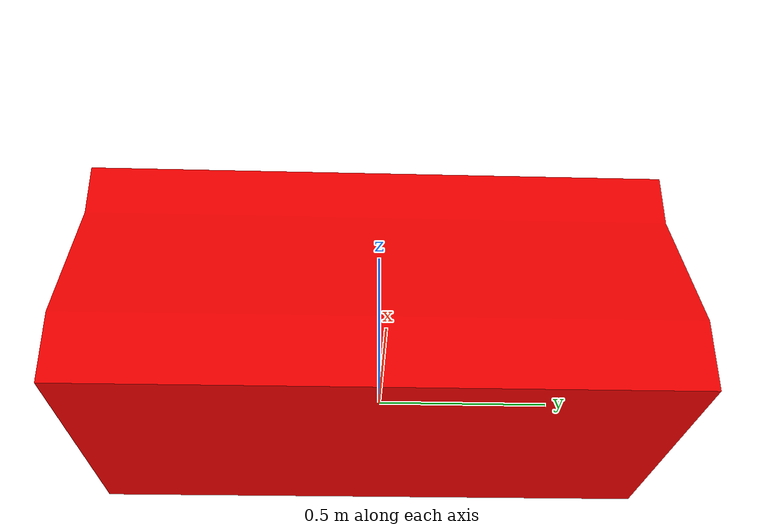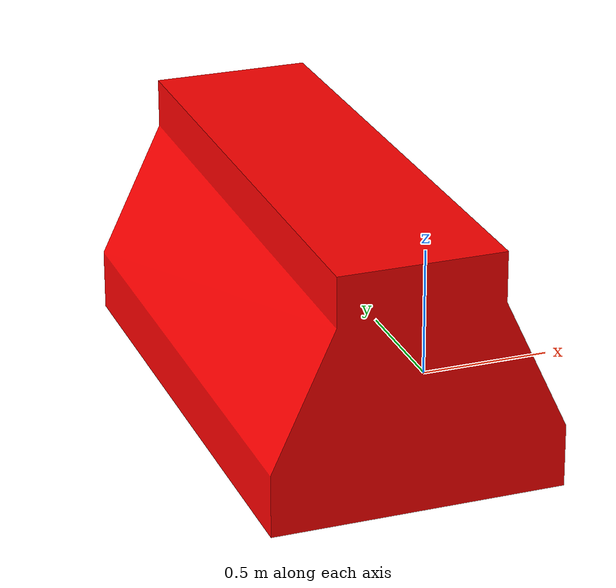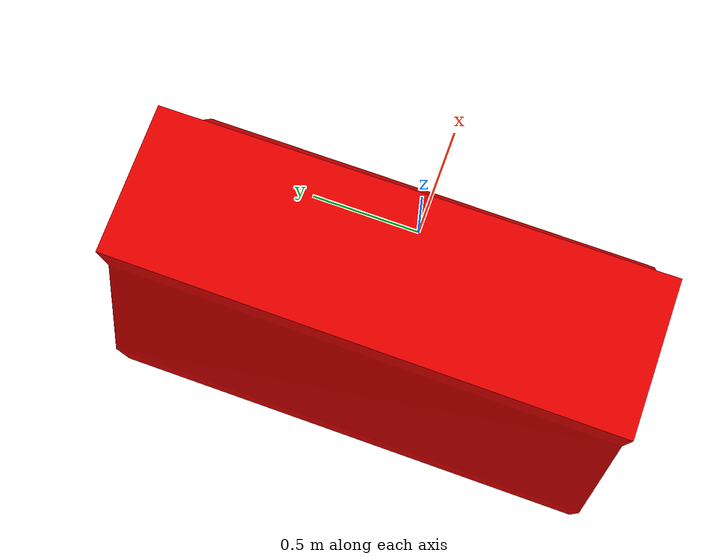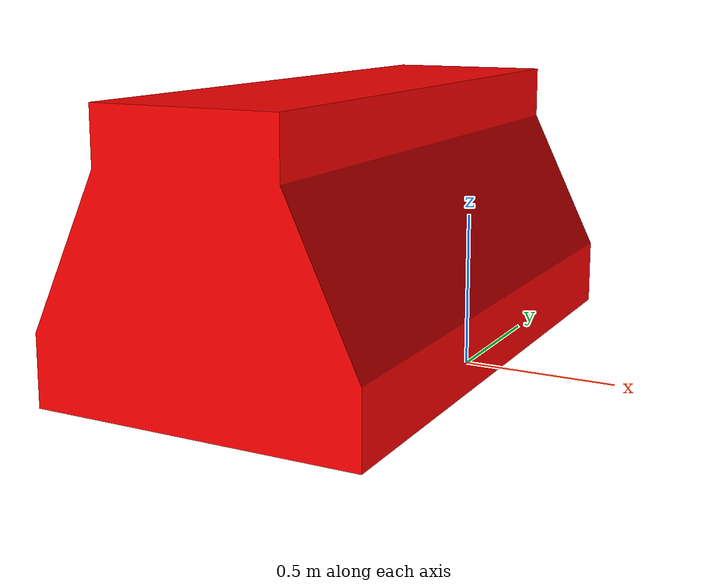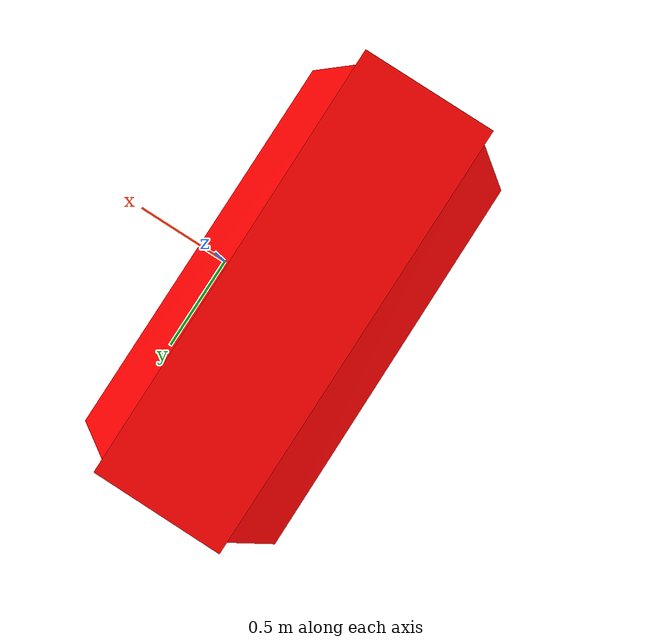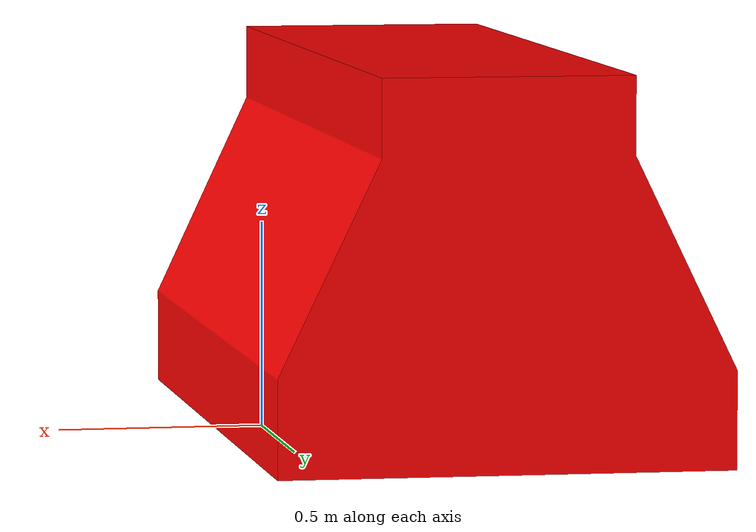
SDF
<?xml version="1.0" ?>
<sdf version="1.5">
  <model name="kirmizi_bariyer">
    <static>true</static>
    <link name="link">
      <collision name="collision">
        <geometry>
          <mesh>
            <uri>model://kirmizi_bariyer/meshes/red.dae</uri>
          </mesh>
        </geometry>
      </collision>
      <visual name="visual">
        <geometry>
          <mesh>
            <uri>model://kirmizi_bariyer/meshes/red.dae</uri>
          </mesh>
        </geometry>
      </visual>
    </link>
  </model>
</sdf>
